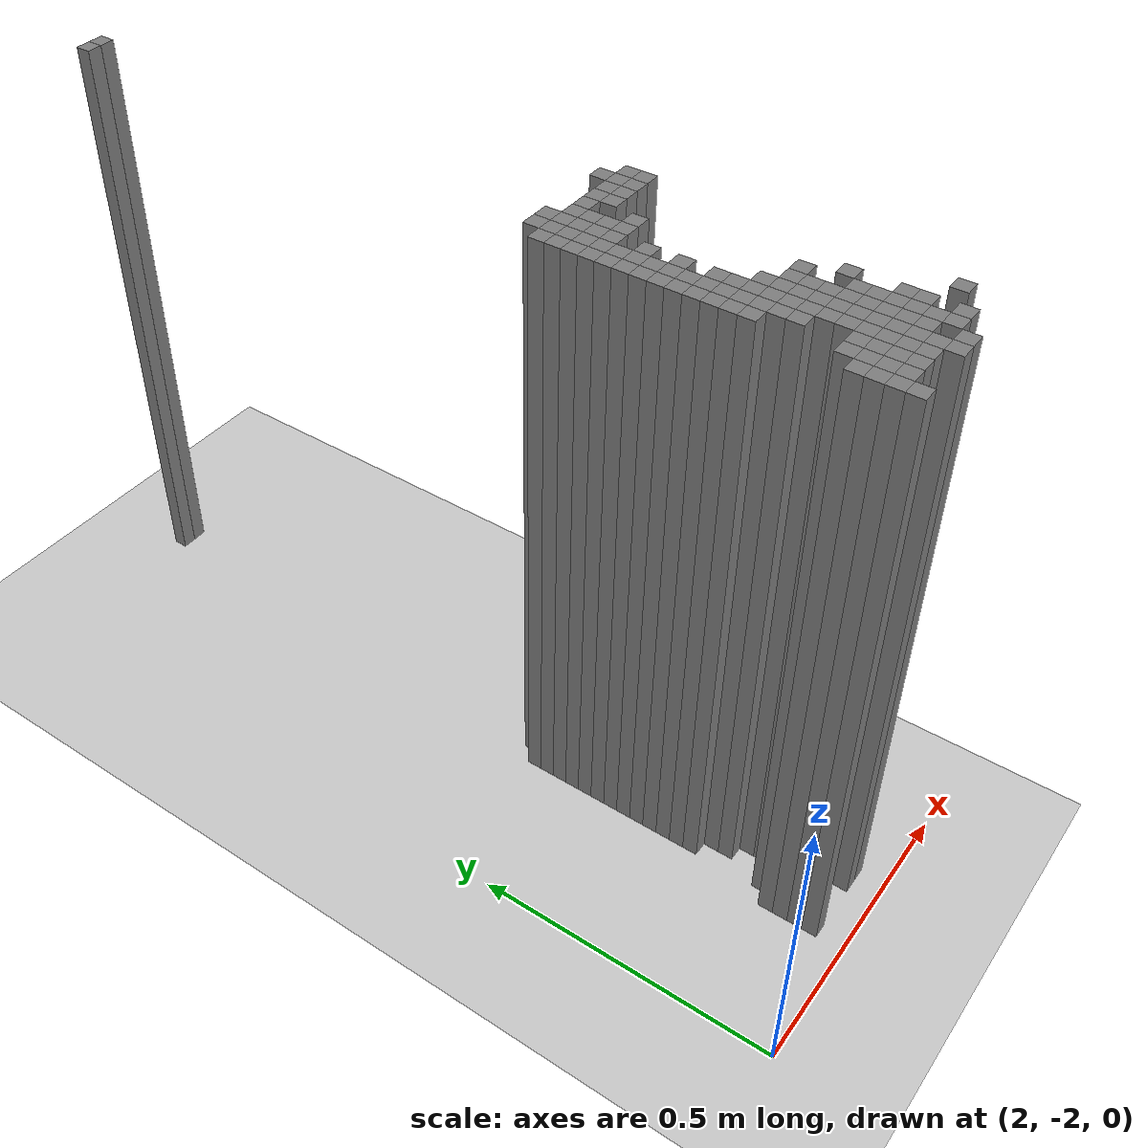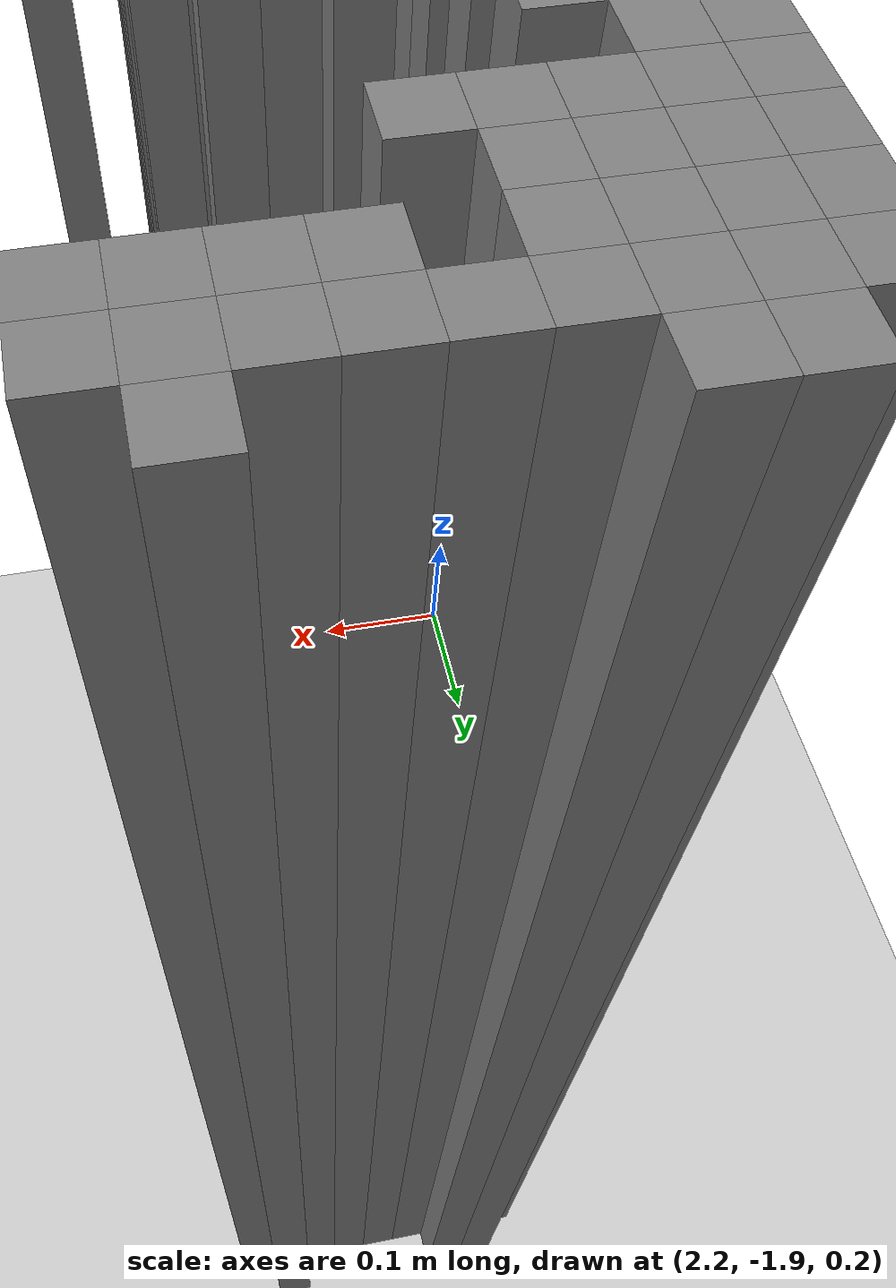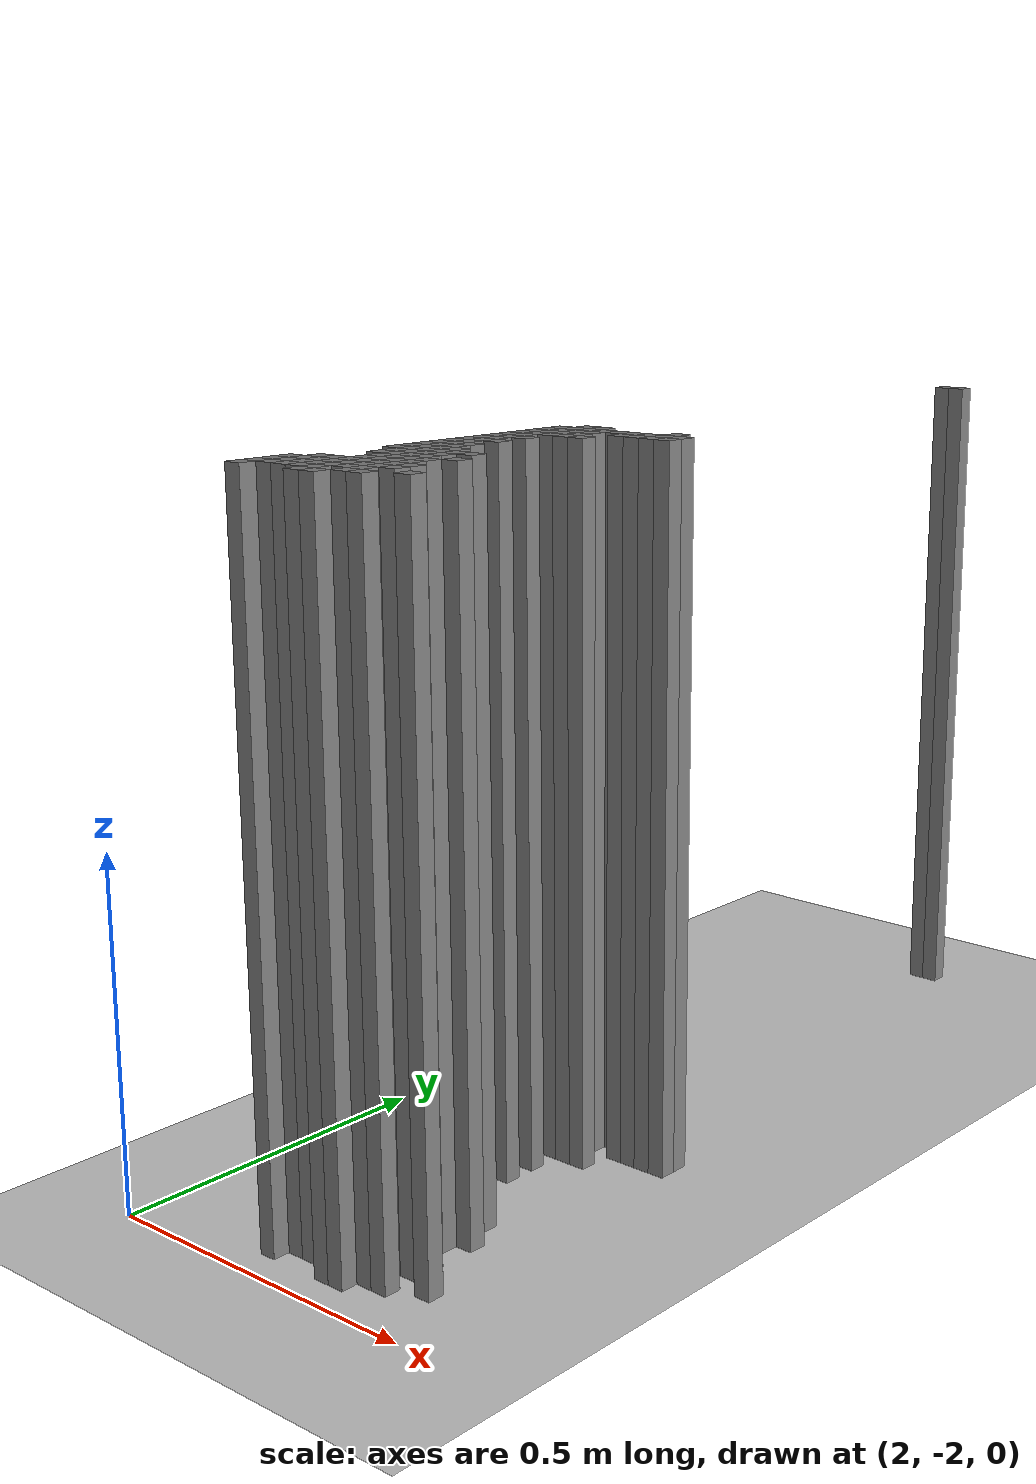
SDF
<sdf version="1.6">
 <world name="map_world">
  <include><uri>model://ground_plane</uri></include>
  <include><uri>model://sun</uri></include>
  <model name="obs_185_71">
   <static>true</static>
   <link name="link">
    <collision name="collision"><geometry><box><size>0.025 0.025 1.0</size></box></geometry></collision>
    <visual name="visual">
     <geometry><box><size>0.025 0.025 1.0</size></box></geometry>
     <material><ambient>0.5 0.5 0.5 1</ambient></material>
    </visual>
   </link>
   <pose>2.298765 -0.5440709999999997 0.5 0 0 0</pose>
  </model>
  <model name="obs_186_71">
   <static>true</static>
   <link name="link">
    <collision name="collision"><geometry><box><size>0.025 0.025 1.0</size></box></geometry></collision>
    <visual name="visual">
     <geometry><box><size>0.025 0.025 1.0</size></box></geometry>
     <material><ambient>0.5 0.5 0.5 1</ambient></material>
    </visual>
   </link>
   <pose>2.3237650000000003 -0.5440709999999997 0.5 0 0 0</pose>
  </model>
  <model name="obs_184_105">
   <static>true</static>
   <link name="link">
    <collision name="collision"><geometry><box><size>0.025 0.025 1.0</size></box></geometry></collision>
    <visual name="visual">
     <geometry><box><size>0.025 0.025 1.0</size></box></geometry>
     <material><ambient>0.5 0.5 0.5 1</ambient></material>
    </visual>
   </link>
   <pose>2.2737650000000005 -1.3940709999999998 0.5 0 0 0</pose>
  </model>
  <model name="obs_185_105">
   <static>true</static>
   <link name="link">
    <collision name="collision"><geometry><box><size>0.025 0.025 1.0</size></box></geometry></collision>
    <visual name="visual">
     <geometry><box><size>0.025 0.025 1.0</size></box></geometry>
     <material><ambient>0.5 0.5 0.5 1</ambient></material>
    </visual>
   </link>
   <pose>2.298765 -1.3940709999999998 0.5 0 0 0</pose>
  </model>
  <model name="obs_190_105">
   <static>true</static>
   <link name="link">
    <collision name="collision"><geometry><box><size>0.025 0.025 1.0</size></box></geometry></collision>
    <visual name="visual">
     <geometry><box><size>0.025 0.025 1.0</size></box></geometry>
     <material><ambient>0.5 0.5 0.5 1</ambient></material>
    </visual>
   </link>
   <pose>2.423765 -1.3940709999999998 0.5 0 0 0</pose>
  </model>
  <model name="obs_183_106">
   <static>true</static>
   <link name="link">
    <collision name="collision"><geometry><box><size>0.025 0.025 1.0</size></box></geometry></collision>
    <visual name="visual">
     <geometry><box><size>0.025 0.025 1.0</size></box></geometry>
     <material><ambient>0.5 0.5 0.5 1</ambient></material>
    </visual>
   </link>
   <pose>2.248765 -1.4190709999999997 0.5 0 0 0</pose>
  </model>
  <model name="obs_184_106">
   <static>true</static>
   <link name="link">
    <collision name="collision"><geometry><box><size>0.025 0.025 1.0</size></box></geometry></collision>
    <visual name="visual">
     <geometry><box><size>0.025 0.025 1.0</size></box></geometry>
     <material><ambient>0.5 0.5 0.5 1</ambient></material>
    </visual>
   </link>
   <pose>2.2737650000000005 -1.4190709999999997 0.5 0 0 0</pose>
  </model>
  <model name="obs_185_106">
   <static>true</static>
   <link name="link">
    <collision name="collision"><geometry><box><size>0.025 0.025 1.0</size></box></geometry></collision>
    <visual name="visual">
     <geometry><box><size>0.025 0.025 1.0</size></box></geometry>
     <material><ambient>0.5 0.5 0.5 1</ambient></material>
    </visual>
   </link>
   <pose>2.298765 -1.4190709999999997 0.5 0 0 0</pose>
  </model>
  <model name="obs_186_106">
   <static>true</static>
   <link name="link">
    <collision name="collision"><geometry><box><size>0.025 0.025 1.0</size></box></geometry></collision>
    <visual name="visual">
     <geometry><box><size>0.025 0.025 1.0</size></box></geometry>
     <material><ambient>0.5 0.5 0.5 1</ambient></material>
    </visual>
   </link>
   <pose>2.3237650000000003 -1.4190709999999997 0.5 0 0 0</pose>
  </model>
  <model name="obs_187_106">
   <static>true</static>
   <link name="link">
    <collision name="collision"><geometry><box><size>0.025 0.025 1.0</size></box></geometry></collision>
    <visual name="visual">
     <geometry><box><size>0.025 0.025 1.0</size></box></geometry>
     <material><ambient>0.5 0.5 0.5 1</ambient></material>
    </visual>
   </link>
   <pose>2.3487649999999998 -1.4190709999999997 0.5 0 0 0</pose>
  </model>
  <model name="obs_188_106">
   <static>true</static>
   <link name="link">
    <collision name="collision"><geometry><box><size>0.025 0.025 1.0</size></box></geometry></collision>
    <visual name="visual">
     <geometry><box><size>0.025 0.025 1.0</size></box></geometry>
     <material><ambient>0.5 0.5 0.5 1</ambient></material>
    </visual>
   </link>
   <pose>2.373765 -1.4190709999999997 0.5 0 0 0</pose>
  </model>
  <model name="obs_189_106">
   <static>true</static>
   <link name="link">
    <collision name="collision"><geometry><box><size>0.025 0.025 1.0</size></box></geometry></collision>
    <visual name="visual">
     <geometry><box><size>0.025 0.025 1.0</size></box></geometry>
     <material><ambient>0.5 0.5 0.5 1</ambient></material>
    </visual>
   </link>
   <pose>2.3987650000000005 -1.4190709999999997 0.5 0 0 0</pose>
  </model>
  <model name="obs_190_106">
   <static>true</static>
   <link name="link">
    <collision name="collision"><geometry><box><size>0.025 0.025 1.0</size></box></geometry></collision>
    <visual name="visual">
     <geometry><box><size>0.025 0.025 1.0</size></box></geometry>
     <material><ambient>0.5 0.5 0.5 1</ambient></material>
    </visual>
   </link>
   <pose>2.423765 -1.4190709999999997 0.5 0 0 0</pose>
  </model>
  <model name="obs_191_106">
   <static>true</static>
   <link name="link">
    <collision name="collision"><geometry><box><size>0.025 0.025 1.0</size></box></geometry></collision>
    <visual name="visual">
     <geometry><box><size>0.025 0.025 1.0</size></box></geometry>
     <material><ambient>0.5 0.5 0.5 1</ambient></material>
    </visual>
   </link>
   <pose>2.4487650000000003 -1.4190709999999997 0.5 0 0 0</pose>
  </model>
  <model name="obs_183_107">
   <static>true</static>
   <link name="link">
    <collision name="collision"><geometry><box><size>0.025 0.025 1.0</size></box></geometry></collision>
    <visual name="visual">
     <geometry><box><size>0.025 0.025 1.0</size></box></geometry>
     <material><ambient>0.5 0.5 0.5 1</ambient></material>
    </visual>
   </link>
   <pose>2.248765 -1.4440709999999999 0.5 0 0 0</pose>
  </model>
  <model name="obs_184_107">
   <static>true</static>
   <link name="link">
    <collision name="collision"><geometry><box><size>0.025 0.025 1.0</size></box></geometry></collision>
    <visual name="visual">
     <geometry><box><size>0.025 0.025 1.0</size></box></geometry>
     <material><ambient>0.5 0.5 0.5 1</ambient></material>
    </visual>
   </link>
   <pose>2.2737650000000005 -1.4440709999999999 0.5 0 0 0</pose>
  </model>
  <model name="obs_185_107">
   <static>true</static>
   <link name="link">
    <collision name="collision"><geometry><box><size>0.025 0.025 1.0</size></box></geometry></collision>
    <visual name="visual">
     <geometry><box><size>0.025 0.025 1.0</size></box></geometry>
     <material><ambient>0.5 0.5 0.5 1</ambient></material>
    </visual>
   </link>
   <pose>2.298765 -1.4440709999999999 0.5 0 0 0</pose>
  </model>
  <model name="obs_186_107">
   <static>true</static>
   <link name="link">
    <collision name="collision"><geometry><box><size>0.025 0.025 1.0</size></box></geometry></collision>
    <visual name="visual">
     <geometry><box><size>0.025 0.025 1.0</size></box></geometry>
     <material><ambient>0.5 0.5 0.5 1</ambient></material>
    </visual>
   </link>
   <pose>2.3237650000000003 -1.4440709999999999 0.5 0 0 0</pose>
  </model>
  <model name="obs_188_107">
   <static>true</static>
   <link name="link">
    <collision name="collision"><geometry><box><size>0.025 0.025 1.0</size></box></geometry></collision>
    <visual name="visual">
     <geometry><box><size>0.025 0.025 1.0</size></box></geometry>
     <material><ambient>0.5 0.5 0.5 1</ambient></material>
    </visual>
   </link>
   <pose>2.373765 -1.4440709999999999 0.5 0 0 0</pose>
  </model>
  <model name="obs_189_107">
   <static>true</static>
   <link name="link">
    <collision name="collision"><geometry><box><size>0.025 0.025 1.0</size></box></geometry></collision>
    <visual name="visual">
     <geometry><box><size>0.025 0.025 1.0</size></box></geometry>
     <material><ambient>0.5 0.5 0.5 1</ambient></material>
    </visual>
   </link>
   <pose>2.3987650000000005 -1.4440709999999999 0.5 0 0 0</pose>
  </model>
  <model name="obs_190_107">
   <static>true</static>
   <link name="link">
    <collision name="collision"><geometry><box><size>0.025 0.025 1.0</size></box></geometry></collision>
    <visual name="visual">
     <geometry><box><size>0.025 0.025 1.0</size></box></geometry>
     <material><ambient>0.5 0.5 0.5 1</ambient></material>
    </visual>
   </link>
   <pose>2.423765 -1.4440709999999999 0.5 0 0 0</pose>
  </model>
  <model name="obs_191_107">
   <static>true</static>
   <link name="link">
    <collision name="collision"><geometry><box><size>0.025 0.025 1.0</size></box></geometry></collision>
    <visual name="visual">
     <geometry><box><size>0.025 0.025 1.0</size></box></geometry>
     <material><ambient>0.5 0.5 0.5 1</ambient></material>
    </visual>
   </link>
   <pose>2.4487650000000003 -1.4440709999999999 0.5 0 0 0</pose>
  </model>
  <model name="obs_183_108">
   <static>true</static>
   <link name="link">
    <collision name="collision"><geometry><box><size>0.025 0.025 1.0</size></box></geometry></collision>
    <visual name="visual">
     <geometry><box><size>0.025 0.025 1.0</size></box></geometry>
     <material><ambient>0.5 0.5 0.5 1</ambient></material>
    </visual>
   </link>
   <pose>2.248765 -1.469071 0.5 0 0 0</pose>
  </model>
  <model name="obs_184_108">
   <static>true</static>
   <link name="link">
    <collision name="collision"><geometry><box><size>0.025 0.025 1.0</size></box></geometry></collision>
    <visual name="visual">
     <geometry><box><size>0.025 0.025 1.0</size></box></geometry>
     <material><ambient>0.5 0.5 0.5 1</ambient></material>
    </visual>
   </link>
   <pose>2.2737650000000005 -1.469071 0.5 0 0 0</pose>
  </model>
  <model name="obs_185_108">
   <static>true</static>
   <link name="link">
    <collision name="collision"><geometry><box><size>0.025 0.025 1.0</size></box></geometry></collision>
    <visual name="visual">
     <geometry><box><size>0.025 0.025 1.0</size></box></geometry>
     <material><ambient>0.5 0.5 0.5 1</ambient></material>
    </visual>
   </link>
   <pose>2.298765 -1.469071 0.5 0 0 0</pose>
  </model>
  <model name="obs_186_108">
   <static>true</static>
   <link name="link">
    <collision name="collision"><geometry><box><size>0.025 0.025 1.0</size></box></geometry></collision>
    <visual name="visual">
     <geometry><box><size>0.025 0.025 1.0</size></box></geometry>
     <material><ambient>0.5 0.5 0.5 1</ambient></material>
    </visual>
   </link>
   <pose>2.3237650000000003 -1.469071 0.5 0 0 0</pose>
  </model>
  <model name="obs_183_109">
   <static>true</static>
   <link name="link">
    <collision name="collision"><geometry><box><size>0.025 0.025 1.0</size></box></geometry></collision>
    <visual name="visual">
     <geometry><box><size>0.025 0.025 1.0</size></box></geometry>
     <material><ambient>0.5 0.5 0.5 1</ambient></material>
    </visual>
   </link>
   <pose>2.248765 -1.494071 0.5 0 0 0</pose>
  </model>
  <model name="obs_184_109">
   <static>true</static>
   <link name="link">
    <collision name="collision"><geometry><box><size>0.025 0.025 1.0</size></box></geometry></collision>
    <visual name="visual">
     <geometry><box><size>0.025 0.025 1.0</size></box></geometry>
     <material><ambient>0.5 0.5 0.5 1</ambient></material>
    </visual>
   </link>
   <pose>2.2737650000000005 -1.494071 0.5 0 0 0</pose>
  </model>
  <model name="obs_185_109">
   <static>true</static>
   <link name="link">
    <collision name="collision"><geometry><box><size>0.025 0.025 1.0</size></box></geometry></collision>
    <visual name="visual">
     <geometry><box><size>0.025 0.025 1.0</size></box></geometry>
     <material><ambient>0.5 0.5 0.5 1</ambient></material>
    </visual>
   </link>
   <pose>2.298765 -1.494071 0.5 0 0 0</pose>
  </model>
  <model name="obs_186_109">
   <static>true</static>
   <link name="link">
    <collision name="collision"><geometry><box><size>0.025 0.025 1.0</size></box></geometry></collision>
    <visual name="visual">
     <geometry><box><size>0.025 0.025 1.0</size></box></geometry>
     <material><ambient>0.5 0.5 0.5 1</ambient></material>
    </visual>
   </link>
   <pose>2.3237650000000003 -1.494071 0.5 0 0 0</pose>
  </model>
  <model name="obs_187_109">
   <static>true</static>
   <link name="link">
    <collision name="collision"><geometry><box><size>0.025 0.025 1.0</size></box></geometry></collision>
    <visual name="visual">
     <geometry><box><size>0.025 0.025 1.0</size></box></geometry>
     <material><ambient>0.5 0.5 0.5 1</ambient></material>
    </visual>
   </link>
   <pose>2.3487649999999998 -1.494071 0.5 0 0 0</pose>
  </model>
  <model name="obs_183_110">
   <static>true</static>
   <link name="link">
    <collision name="collision"><geometry><box><size>0.025 0.025 1.0</size></box></geometry></collision>
    <visual name="visual">
     <geometry><box><size>0.025 0.025 1.0</size></box></geometry>
     <material><ambient>0.5 0.5 0.5 1</ambient></material>
    </visual>
   </link>
   <pose>2.248765 -1.5190709999999998 0.5 0 0 0</pose>
  </model>
  <model name="obs_184_110">
   <static>true</static>
   <link name="link">
    <collision name="collision"><geometry><box><size>0.025 0.025 1.0</size></box></geometry></collision>
    <visual name="visual">
     <geometry><box><size>0.025 0.025 1.0</size></box></geometry>
     <material><ambient>0.5 0.5 0.5 1</ambient></material>
    </visual>
   </link>
   <pose>2.2737650000000005 -1.5190709999999998 0.5 0 0 0</pose>
  </model>
  <model name="obs_183_111">
   <static>true</static>
   <link name="link">
    <collision name="collision"><geometry><box><size>0.025 0.025 1.0</size></box></geometry></collision>
    <visual name="visual">
     <geometry><box><size>0.025 0.025 1.0</size></box></geometry>
     <material><ambient>0.5 0.5 0.5 1</ambient></material>
    </visual>
   </link>
   <pose>2.248765 -1.544071 0.5 0 0 0</pose>
  </model>
  <model name="obs_184_111">
   <static>true</static>
   <link name="link">
    <collision name="collision"><geometry><box><size>0.025 0.025 1.0</size></box></geometry></collision>
    <visual name="visual">
     <geometry><box><size>0.025 0.025 1.0</size></box></geometry>
     <material><ambient>0.5 0.5 0.5 1</ambient></material>
    </visual>
   </link>
   <pose>2.2737650000000005 -1.544071 0.5 0 0 0</pose>
  </model>
  <model name="obs_185_111">
   <static>true</static>
   <link name="link">
    <collision name="collision"><geometry><box><size>0.025 0.025 1.0</size></box></geometry></collision>
    <visual name="visual">
     <geometry><box><size>0.025 0.025 1.0</size></box></geometry>
     <material><ambient>0.5 0.5 0.5 1</ambient></material>
    </visual>
   </link>
   <pose>2.298765 -1.544071 0.5 0 0 0</pose>
  </model>
  <model name="obs_183_112">
   <static>true</static>
   <link name="link">
    <collision name="collision"><geometry><box><size>0.025 0.025 1.0</size></box></geometry></collision>
    <visual name="visual">
     <geometry><box><size>0.025 0.025 1.0</size></box></geometry>
     <material><ambient>0.5 0.5 0.5 1</ambient></material>
    </visual>
   </link>
   <pose>2.248765 -1.5690709999999999 0.5 0 0 0</pose>
  </model>
  <model name="obs_184_112">
   <static>true</static>
   <link name="link">
    <collision name="collision"><geometry><box><size>0.025 0.025 1.0</size></box></geometry></collision>
    <visual name="visual">
     <geometry><box><size>0.025 0.025 1.0</size></box></geometry>
     <material><ambient>0.5 0.5 0.5 1</ambient></material>
    </visual>
   </link>
   <pose>2.2737650000000005 -1.5690709999999999 0.5 0 0 0</pose>
  </model>
  <model name="obs_183_113">
   <static>true</static>
   <link name="link">
    <collision name="collision"><geometry><box><size>0.025 0.025 1.0</size></box></geometry></collision>
    <visual name="visual">
     <geometry><box><size>0.025 0.025 1.0</size></box></geometry>
     <material><ambient>0.5 0.5 0.5 1</ambient></material>
    </visual>
   </link>
   <pose>2.248765 -1.594071 0.5 0 0 0</pose>
  </model>
  <model name="obs_184_113">
   <static>true</static>
   <link name="link">
    <collision name="collision"><geometry><box><size>0.025 0.025 1.0</size></box></geometry></collision>
    <visual name="visual">
     <geometry><box><size>0.025 0.025 1.0</size></box></geometry>
     <material><ambient>0.5 0.5 0.5 1</ambient></material>
    </visual>
   </link>
   <pose>2.2737650000000005 -1.594071 0.5 0 0 0</pose>
  </model>
  <model name="obs_185_113">
   <static>true</static>
   <link name="link">
    <collision name="collision"><geometry><box><size>0.025 0.025 1.0</size></box></geometry></collision>
    <visual name="visual">
     <geometry><box><size>0.025 0.025 1.0</size></box></geometry>
     <material><ambient>0.5 0.5 0.5 1</ambient></material>
    </visual>
   </link>
   <pose>2.298765 -1.594071 0.5 0 0 0</pose>
  </model>
  <model name="obs_183_114">
   <static>true</static>
   <link name="link">
    <collision name="collision"><geometry><box><size>0.025 0.025 1.0</size></box></geometry></collision>
    <visual name="visual">
     <geometry><box><size>0.025 0.025 1.0</size></box></geometry>
     <material><ambient>0.5 0.5 0.5 1</ambient></material>
    </visual>
   </link>
   <pose>2.248765 -1.619071 0.5 0 0 0</pose>
  </model>
  <model name="obs_184_114">
   <static>true</static>
   <link name="link">
    <collision name="collision"><geometry><box><size>0.025 0.025 1.0</size></box></geometry></collision>
    <visual name="visual">
     <geometry><box><size>0.025 0.025 1.0</size></box></geometry>
     <material><ambient>0.5 0.5 0.5 1</ambient></material>
    </visual>
   </link>
   <pose>2.2737650000000005 -1.619071 0.5 0 0 0</pose>
  </model>
  <model name="obs_183_115">
   <static>true</static>
   <link name="link">
    <collision name="collision"><geometry><box><size>0.025 0.025 1.0</size></box></geometry></collision>
    <visual name="visual">
     <geometry><box><size>0.025 0.025 1.0</size></box></geometry>
     <material><ambient>0.5 0.5 0.5 1</ambient></material>
    </visual>
   </link>
   <pose>2.248765 -1.6440709999999998 0.5 0 0 0</pose>
  </model>
  <model name="obs_184_115">
   <static>true</static>
   <link name="link">
    <collision name="collision"><geometry><box><size>0.025 0.025 1.0</size></box></geometry></collision>
    <visual name="visual">
     <geometry><box><size>0.025 0.025 1.0</size></box></geometry>
     <material><ambient>0.5 0.5 0.5 1</ambient></material>
    </visual>
   </link>
   <pose>2.2737650000000005 -1.6440709999999998 0.5 0 0 0</pose>
  </model>
  <model name="obs_185_115">
   <static>true</static>
   <link name="link">
    <collision name="collision"><geometry><box><size>0.025 0.025 1.0</size></box></geometry></collision>
    <visual name="visual">
     <geometry><box><size>0.025 0.025 1.0</size></box></geometry>
     <material><ambient>0.5 0.5 0.5 1</ambient></material>
    </visual>
   </link>
   <pose>2.298765 -1.6440709999999998 0.5 0 0 0</pose>
  </model>
  <model name="obs_183_116">
   <static>true</static>
   <link name="link">
    <collision name="collision"><geometry><box><size>0.025 0.025 1.0</size></box></geometry></collision>
    <visual name="visual">
     <geometry><box><size>0.025 0.025 1.0</size></box></geometry>
     <material><ambient>0.5 0.5 0.5 1</ambient></material>
    </visual>
   </link>
   <pose>2.248765 -1.669071 0.5 0 0 0</pose>
  </model>
  <model name="obs_184_116">
   <static>true</static>
   <link name="link">
    <collision name="collision"><geometry><box><size>0.025 0.025 1.0</size></box></geometry></collision>
    <visual name="visual">
     <geometry><box><size>0.025 0.025 1.0</size></box></geometry>
     <material><ambient>0.5 0.5 0.5 1</ambient></material>
    </visual>
   </link>
   <pose>2.2737650000000005 -1.669071 0.5 0 0 0</pose>
  </model>
  <model name="obs_185_116">
   <static>true</static>
   <link name="link">
    <collision name="collision"><geometry><box><size>0.025 0.025 1.0</size></box></geometry></collision>
    <visual name="visual">
     <geometry><box><size>0.025 0.025 1.0</size></box></geometry>
     <material><ambient>0.5 0.5 0.5 1</ambient></material>
    </visual>
   </link>
   <pose>2.298765 -1.669071 0.5 0 0 0</pose>
  </model>
  <model name="obs_183_117">
   <static>true</static>
   <link name="link">
    <collision name="collision"><geometry><box><size>0.025 0.025 1.0</size></box></geometry></collision>
    <visual name="visual">
     <geometry><box><size>0.025 0.025 1.0</size></box></geometry>
     <material><ambient>0.5 0.5 0.5 1</ambient></material>
    </visual>
   </link>
   <pose>2.248765 -1.6940709999999999 0.5 0 0 0</pose>
  </model>
  <model name="obs_184_117">
   <static>true</static>
   <link name="link">
    <collision name="collision"><geometry><box><size>0.025 0.025 1.0</size></box></geometry></collision>
    <visual name="visual">
     <geometry><box><size>0.025 0.025 1.0</size></box></geometry>
     <material><ambient>0.5 0.5 0.5 1</ambient></material>
    </visual>
   </link>
   <pose>2.2737650000000005 -1.6940709999999999 0.5 0 0 0</pose>
  </model>
  <model name="obs_185_117">
   <static>true</static>
   <link name="link">
    <collision name="collision"><geometry><box><size>0.025 0.025 1.0</size></box></geometry></collision>
    <visual name="visual">
     <geometry><box><size>0.025 0.025 1.0</size></box></geometry>
     <material><ambient>0.5 0.5 0.5 1</ambient></material>
    </visual>
   </link>
   <pose>2.298765 -1.6940709999999999 0.5 0 0 0</pose>
  </model>
  <model name="obs_186_117">
   <static>true</static>
   <link name="link">
    <collision name="collision"><geometry><box><size>0.025 0.025 1.0</size></box></geometry></collision>
    <visual name="visual">
     <geometry><box><size>0.025 0.025 1.0</size></box></geometry>
     <material><ambient>0.5 0.5 0.5 1</ambient></material>
    </visual>
   </link>
   <pose>2.3237650000000003 -1.6940709999999999 0.5 0 0 0</pose>
  </model>
  <model name="obs_183_118">
   <static>true</static>
   <link name="link">
    <collision name="collision"><geometry><box><size>0.025 0.025 1.0</size></box></geometry></collision>
    <visual name="visual">
     <geometry><box><size>0.025 0.025 1.0</size></box></geometry>
     <material><ambient>0.5 0.5 0.5 1</ambient></material>
    </visual>
   </link>
   <pose>2.248765 -1.719071 0.5 0 0 0</pose>
  </model>
  <model name="obs_184_118">
   <static>true</static>
   <link name="link">
    <collision name="collision"><geometry><box><size>0.025 0.025 1.0</size></box></geometry></collision>
    <visual name="visual">
     <geometry><box><size>0.025 0.025 1.0</size></box></geometry>
     <material><ambient>0.5 0.5 0.5 1</ambient></material>
    </visual>
   </link>
   <pose>2.2737650000000005 -1.719071 0.5 0 0 0</pose>
  </model>
  <model name="obs_185_118">
   <static>true</static>
   <link name="link">
    <collision name="collision"><geometry><box><size>0.025 0.025 1.0</size></box></geometry></collision>
    <visual name="visual">
     <geometry><box><size>0.025 0.025 1.0</size></box></geometry>
     <material><ambient>0.5 0.5 0.5 1</ambient></material>
    </visual>
   </link>
   <pose>2.298765 -1.719071 0.5 0 0 0</pose>
  </model>
  <model name="obs_186_118">
   <static>true</static>
   <link name="link">
    <collision name="collision"><geometry><box><size>0.025 0.025 1.0</size></box></geometry></collision>
    <visual name="visual">
     <geometry><box><size>0.025 0.025 1.0</size></box></geometry>
     <material><ambient>0.5 0.5 0.5 1</ambient></material>
    </visual>
   </link>
   <pose>2.3237650000000003 -1.719071 0.5 0 0 0</pose>
  </model>
  <model name="obs_187_118">
   <static>true</static>
   <link name="link">
    <collision name="collision"><geometry><box><size>0.025 0.025 1.0</size></box></geometry></collision>
    <visual name="visual">
     <geometry><box><size>0.025 0.025 1.0</size></box></geometry>
     <material><ambient>0.5 0.5 0.5 1</ambient></material>
    </visual>
   </link>
   <pose>2.3487649999999998 -1.719071 0.5 0 0 0</pose>
  </model>
  <model name="obs_188_118">
   <static>true</static>
   <link name="link">
    <collision name="collision"><geometry><box><size>0.025 0.025 1.0</size></box></geometry></collision>
    <visual name="visual">
     <geometry><box><size>0.025 0.025 1.0</size></box></geometry>
     <material><ambient>0.5 0.5 0.5 1</ambient></material>
    </visual>
   </link>
   <pose>2.373765 -1.719071 0.5 0 0 0</pose>
  </model>
  <model name="obs_184_119">
   <static>true</static>
   <link name="link">
    <collision name="collision"><geometry><box><size>0.025 0.025 1.0</size></box></geometry></collision>
    <visual name="visual">
     <geometry><box><size>0.025 0.025 1.0</size></box></geometry>
     <material><ambient>0.5 0.5 0.5 1</ambient></material>
    </visual>
   </link>
   <pose>2.2737650000000005 -1.744071 0.5 0 0 0</pose>
  </model>
  <model name="obs_185_119">
   <static>true</static>
   <link name="link">
    <collision name="collision"><geometry><box><size>0.025 0.025 1.0</size></box></geometry></collision>
    <visual name="visual">
     <geometry><box><size>0.025 0.025 1.0</size></box></geometry>
     <material><ambient>0.5 0.5 0.5 1</ambient></material>
    </visual>
   </link>
   <pose>2.298765 -1.744071 0.5 0 0 0</pose>
  </model>
  <model name="obs_186_119">
   <static>true</static>
   <link name="link">
    <collision name="collision"><geometry><box><size>0.025 0.025 1.0</size></box></geometry></collision>
    <visual name="visual">
     <geometry><box><size>0.025 0.025 1.0</size></box></geometry>
     <material><ambient>0.5 0.5 0.5 1</ambient></material>
    </visual>
   </link>
   <pose>2.3237650000000003 -1.744071 0.5 0 0 0</pose>
  </model>
  <model name="obs_187_119">
   <static>true</static>
   <link name="link">
    <collision name="collision"><geometry><box><size>0.025 0.025 1.0</size></box></geometry></collision>
    <visual name="visual">
     <geometry><box><size>0.025 0.025 1.0</size></box></geometry>
     <material><ambient>0.5 0.5 0.5 1</ambient></material>
    </visual>
   </link>
   <pose>2.3487649999999998 -1.744071 0.5 0 0 0</pose>
  </model>
  <model name="obs_184_120">
   <static>true</static>
   <link name="link">
    <collision name="collision"><geometry><box><size>0.025 0.025 1.0</size></box></geometry></collision>
    <visual name="visual">
     <geometry><box><size>0.025 0.025 1.0</size></box></geometry>
     <material><ambient>0.5 0.5 0.5 1</ambient></material>
    </visual>
   </link>
   <pose>2.2737650000000005 -1.7690709999999998 0.5 0 0 0</pose>
  </model>
  <model name="obs_185_120">
   <static>true</static>
   <link name="link">
    <collision name="collision"><geometry><box><size>0.025 0.025 1.0</size></box></geometry></collision>
    <visual name="visual">
     <geometry><box><size>0.025 0.025 1.0</size></box></geometry>
     <material><ambient>0.5 0.5 0.5 1</ambient></material>
    </visual>
   </link>
   <pose>2.298765 -1.7690709999999998 0.5 0 0 0</pose>
  </model>
  <model name="obs_186_120">
   <static>true</static>
   <link name="link">
    <collision name="collision"><geometry><box><size>0.025 0.025 1.0</size></box></geometry></collision>
    <visual name="visual">
     <geometry><box><size>0.025 0.025 1.0</size></box></geometry>
     <material><ambient>0.5 0.5 0.5 1</ambient></material>
    </visual>
   </link>
   <pose>2.3237650000000003 -1.7690709999999998 0.5 0 0 0</pose>
  </model>
  <model name="obs_187_120">
   <static>true</static>
   <link name="link">
    <collision name="collision"><geometry><box><size>0.025 0.025 1.0</size></box></geometry></collision>
    <visual name="visual">
     <geometry><box><size>0.025 0.025 1.0</size></box></geometry>
     <material><ambient>0.5 0.5 0.5 1</ambient></material>
    </visual>
   </link>
   <pose>2.3487649999999998 -1.7690709999999998 0.5 0 0 0</pose>
  </model>
  <model name="obs_189_120">
   <static>true</static>
   <link name="link">
    <collision name="collision"><geometry><box><size>0.025 0.025 1.0</size></box></geometry></collision>
    <visual name="visual">
     <geometry><box><size>0.025 0.025 1.0</size></box></geometry>
     <material><ambient>0.5 0.5 0.5 1</ambient></material>
    </visual>
   </link>
   <pose>2.3987650000000005 -1.7690709999999998 0.5 0 0 0</pose>
  </model>
  <model name="obs_185_121">
   <static>true</static>
   <link name="link">
    <collision name="collision"><geometry><box><size>0.025 0.025 1.0</size></box></geometry></collision>
    <visual name="visual">
     <geometry><box><size>0.025 0.025 1.0</size></box></geometry>
     <material><ambient>0.5 0.5 0.5 1</ambient></material>
    </visual>
   </link>
   <pose>2.298765 -1.794071 0.5 0 0 0</pose>
  </model>
  <model name="obs_186_121">
   <static>true</static>
   <link name="link">
    <collision name="collision"><geometry><box><size>0.025 0.025 1.0</size></box></geometry></collision>
    <visual name="visual">
     <geometry><box><size>0.025 0.025 1.0</size></box></geometry>
     <material><ambient>0.5 0.5 0.5 1</ambient></material>
    </visual>
   </link>
   <pose>2.3237650000000003 -1.794071 0.5 0 0 0</pose>
  </model>
  <model name="obs_187_121">
   <static>true</static>
   <link name="link">
    <collision name="collision"><geometry><box><size>0.025 0.025 1.0</size></box></geometry></collision>
    <visual name="visual">
     <geometry><box><size>0.025 0.025 1.0</size></box></geometry>
     <material><ambient>0.5 0.5 0.5 1</ambient></material>
    </visual>
   </link>
   <pose>2.3487649999999998 -1.794071 0.5 0 0 0</pose>
  </model>
  <model name="obs_188_121">
   <static>true</static>
   <link name="link">
    <collision name="collision"><geometry><box><size>0.025 0.025 1.0</size></box></geometry></collision>
    <visual name="visual">
     <geometry><box><size>0.025 0.025 1.0</size></box></geometry>
     <material><ambient>0.5 0.5 0.5 1</ambient></material>
    </visual>
   </link>
   <pose>2.373765 -1.794071 0.5 0 0 0</pose>
  </model>
  <model name="obs_185_122">
   <static>true</static>
   <link name="link">
    <collision name="collision"><geometry><box><size>0.025 0.025 1.0</size></box></geometry></collision>
    <visual name="visual">
     <geometry><box><size>0.025 0.025 1.0</size></box></geometry>
     <material><ambient>0.5 0.5 0.5 1</ambient></material>
    </visual>
   </link>
   <pose>2.298765 -1.8190709999999999 0.5 0 0 0</pose>
  </model>
  <model name="obs_186_122">
   <static>true</static>
   <link name="link">
    <collision name="collision"><geometry><box><size>0.025 0.025 1.0</size></box></geometry></collision>
    <visual name="visual">
     <geometry><box><size>0.025 0.025 1.0</size></box></geometry>
     <material><ambient>0.5 0.5 0.5 1</ambient></material>
    </visual>
   </link>
   <pose>2.3237650000000003 -1.8190709999999999 0.5 0 0 0</pose>
  </model>
  <model name="obs_187_122">
   <static>true</static>
   <link name="link">
    <collision name="collision"><geometry><box><size>0.025 0.025 1.0</size></box></geometry></collision>
    <visual name="visual">
     <geometry><box><size>0.025 0.025 1.0</size></box></geometry>
     <material><ambient>0.5 0.5 0.5 1</ambient></material>
    </visual>
   </link>
   <pose>2.3487649999999998 -1.8190709999999999 0.5 0 0 0</pose>
  </model>
  <model name="obs_188_122">
   <static>true</static>
   <link name="link">
    <collision name="collision"><geometry><box><size>0.025 0.025 1.0</size></box></geometry></collision>
    <visual name="visual">
     <geometry><box><size>0.025 0.025 1.0</size></box></geometry>
     <material><ambient>0.5 0.5 0.5 1</ambient></material>
    </visual>
   </link>
   <pose>2.373765 -1.8190709999999999 0.5 0 0 0</pose>
  </model>
  <model name="obs_183_123">
   <static>true</static>
   <link name="link">
    <collision name="collision"><geometry><box><size>0.025 0.025 1.0</size></box></geometry></collision>
    <visual name="visual">
     <geometry><box><size>0.025 0.025 1.0</size></box></geometry>
     <material><ambient>0.5 0.5 0.5 1</ambient></material>
    </visual>
   </link>
   <pose>2.248765 -1.844071 0.5 0 0 0</pose>
  </model>
  <model name="obs_184_123">
   <static>true</static>
   <link name="link">
    <collision name="collision"><geometry><box><size>0.025 0.025 1.0</size></box></geometry></collision>
    <visual name="visual">
     <geometry><box><size>0.025 0.025 1.0</size></box></geometry>
     <material><ambient>0.5 0.5 0.5 1</ambient></material>
    </visual>
   </link>
   <pose>2.2737650000000005 -1.844071 0.5 0 0 0</pose>
  </model>
  <model name="obs_185_123">
   <static>true</static>
   <link name="link">
    <collision name="collision"><geometry><box><size>0.025 0.025 1.0</size></box></geometry></collision>
    <visual name="visual">
     <geometry><box><size>0.025 0.025 1.0</size></box></geometry>
     <material><ambient>0.5 0.5 0.5 1</ambient></material>
    </visual>
   </link>
   <pose>2.298765 -1.844071 0.5 0 0 0</pose>
  </model>
  <model name="obs_186_123">
   <static>true</static>
   <link name="link">
    <collision name="collision"><geometry><box><size>0.025 0.025 1.0</size></box></geometry></collision>
    <visual name="visual">
     <geometry><box><size>0.025 0.025 1.0</size></box></geometry>
     <material><ambient>0.5 0.5 0.5 1</ambient></material>
    </visual>
   </link>
   <pose>2.3237650000000003 -1.844071 0.5 0 0 0</pose>
  </model>
  <model name="obs_187_123">
   <static>true</static>
   <link name="link">
    <collision name="collision"><geometry><box><size>0.025 0.025 1.0</size></box></geometry></collision>
    <visual name="visual">
     <geometry><box><size>0.025 0.025 1.0</size></box></geometry>
     <material><ambient>0.5 0.5 0.5 1</ambient></material>
    </visual>
   </link>
   <pose>2.3487649999999998 -1.844071 0.5 0 0 0</pose>
  </model>
  <model name="obs_188_123">
   <static>true</static>
   <link name="link">
    <collision name="collision"><geometry><box><size>0.025 0.025 1.0</size></box></geometry></collision>
    <visual name="visual">
     <geometry><box><size>0.025 0.025 1.0</size></box></geometry>
     <material><ambient>0.5 0.5 0.5 1</ambient></material>
    </visual>
   </link>
   <pose>2.373765 -1.844071 0.5 0 0 0</pose>
  </model>
  <model name="obs_189_123">
   <static>true</static>
   <link name="link">
    <collision name="collision"><geometry><box><size>0.025 0.025 1.0</size></box></geometry></collision>
    <visual name="visual">
     <geometry><box><size>0.025 0.025 1.0</size></box></geometry>
     <material><ambient>0.5 0.5 0.5 1</ambient></material>
    </visual>
   </link>
   <pose>2.3987650000000005 -1.844071 0.5 0 0 0</pose>
  </model>
  <model name="obs_182_124">
   <static>true</static>
   <link name="link">
    <collision name="collision"><geometry><box><size>0.025 0.025 1.0</size></box></geometry></collision>
    <visual name="visual">
     <geometry><box><size>0.025 0.025 1.0</size></box></geometry>
     <material><ambient>0.5 0.5 0.5 1</ambient></material>
    </visual>
   </link>
   <pose>2.2237649999999998 -1.869071 0.5 0 0 0</pose>
  </model>
  <model name="obs_183_124">
   <static>true</static>
   <link name="link">
    <collision name="collision"><geometry><box><size>0.025 0.025 1.0</size></box></geometry></collision>
    <visual name="visual">
     <geometry><box><size>0.025 0.025 1.0</size></box></geometry>
     <material><ambient>0.5 0.5 0.5 1</ambient></material>
    </visual>
   </link>
   <pose>2.248765 -1.869071 0.5 0 0 0</pose>
  </model>
  <model name="obs_184_124">
   <static>true</static>
   <link name="link">
    <collision name="collision"><geometry><box><size>0.025 0.025 1.0</size></box></geometry></collision>
    <visual name="visual">
     <geometry><box><size>0.025 0.025 1.0</size></box></geometry>
     <material><ambient>0.5 0.5 0.5 1</ambient></material>
    </visual>
   </link>
   <pose>2.2737650000000005 -1.869071 0.5 0 0 0</pose>
  </model>
  <model name="obs_185_124">
   <static>true</static>
   <link name="link">
    <collision name="collision"><geometry><box><size>0.025 0.025 1.0</size></box></geometry></collision>
    <visual name="visual">
     <geometry><box><size>0.025 0.025 1.0</size></box></geometry>
     <material><ambient>0.5 0.5 0.5 1</ambient></material>
    </visual>
   </link>
   <pose>2.298765 -1.869071 0.5 0 0 0</pose>
  </model>
  <model name="obs_186_124">
   <static>true</static>
   <link name="link">
    <collision name="collision"><geometry><box><size>0.025 0.025 1.0</size></box></geometry></collision>
    <visual name="visual">
     <geometry><box><size>0.025 0.025 1.0</size></box></geometry>
     <material><ambient>0.5 0.5 0.5 1</ambient></material>
    </visual>
   </link>
   <pose>2.3237650000000003 -1.869071 0.5 0 0 0</pose>
  </model>
  <model name="obs_187_124">
   <static>true</static>
   <link name="link">
    <collision name="collision"><geometry><box><size>0.025 0.025 1.0</size></box></geometry></collision>
    <visual name="visual">
     <geometry><box><size>0.025 0.025 1.0</size></box></geometry>
     <material><ambient>0.5 0.5 0.5 1</ambient></material>
    </visual>
   </link>
   <pose>2.3487649999999998 -1.869071 0.5 0 0 0</pose>
  </model>
  <model name="obs_188_124">
   <static>true</static>
   <link name="link">
    <collision name="collision"><geometry><box><size>0.025 0.025 1.0</size></box></geometry></collision>
    <visual name="visual">
     <geometry><box><size>0.025 0.025 1.0</size></box></geometry>
     <material><ambient>0.5 0.5 0.5 1</ambient></material>
    </visual>
   </link>
   <pose>2.373765 -1.869071 0.5 0 0 0</pose>
  </model>
  <model name="obs_189_124">
   <static>true</static>
   <link name="link">
    <collision name="collision"><geometry><box><size>0.025 0.025 1.0</size></box></geometry></collision>
    <visual name="visual">
     <geometry><box><size>0.025 0.025 1.0</size></box></geometry>
     <material><ambient>0.5 0.5 0.5 1</ambient></material>
    </visual>
   </link>
   <pose>2.3987650000000005 -1.869071 0.5 0 0 0</pose>
  </model>
  <model name="obs_182_125">
   <static>true</static>
   <link name="link">
    <collision name="collision"><geometry><box><size>0.025 0.025 1.0</size></box></geometry></collision>
    <visual name="visual">
     <geometry><box><size>0.025 0.025 1.0</size></box></geometry>
     <material><ambient>0.5 0.5 0.5 1</ambient></material>
    </visual>
   </link>
   <pose>2.2237649999999998 -1.8940709999999998 0.5 0 0 0</pose>
  </model>
  <model name="obs_183_125">
   <static>true</static>
   <link name="link">
    <collision name="collision"><geometry><box><size>0.025 0.025 1.0</size></box></geometry></collision>
    <visual name="visual">
     <geometry><box><size>0.025 0.025 1.0</size></box></geometry>
     <material><ambient>0.5 0.5 0.5 1</ambient></material>
    </visual>
   </link>
   <pose>2.248765 -1.8940709999999998 0.5 0 0 0</pose>
  </model>
  <model name="obs_184_125">
   <static>true</static>
   <link name="link">
    <collision name="collision"><geometry><box><size>0.025 0.025 1.0</size></box></geometry></collision>
    <visual name="visual">
     <geometry><box><size>0.025 0.025 1.0</size></box></geometry>
     <material><ambient>0.5 0.5 0.5 1</ambient></material>
    </visual>
   </link>
   <pose>2.2737650000000005 -1.8940709999999998 0.5 0 0 0</pose>
  </model>
  <model name="obs_185_125">
   <static>true</static>
   <link name="link">
    <collision name="collision"><geometry><box><size>0.025 0.025 1.0</size></box></geometry></collision>
    <visual name="visual">
     <geometry><box><size>0.025 0.025 1.0</size></box></geometry>
     <material><ambient>0.5 0.5 0.5 1</ambient></material>
    </visual>
   </link>
   <pose>2.298765 -1.8940709999999998 0.5 0 0 0</pose>
  </model>
  <model name="obs_186_125">
   <static>true</static>
   <link name="link">
    <collision name="collision"><geometry><box><size>0.025 0.025 1.0</size></box></geometry></collision>
    <visual name="visual">
     <geometry><box><size>0.025 0.025 1.0</size></box></geometry>
     <material><ambient>0.5 0.5 0.5 1</ambient></material>
    </visual>
   </link>
   <pose>2.3237650000000003 -1.8940709999999998 0.5 0 0 0</pose>
  </model>
  <model name="obs_187_125">
   <static>true</static>
   <link name="link">
    <collision name="collision"><geometry><box><size>0.025 0.025 1.0</size></box></geometry></collision>
    <visual name="visual">
     <geometry><box><size>0.025 0.025 1.0</size></box></geometry>
     <material><ambient>0.5 0.5 0.5 1</ambient></material>
    </visual>
   </link>
   <pose>2.3487649999999998 -1.8940709999999998 0.5 0 0 0</pose>
  </model>
  <model name="obs_188_125">
   <static>true</static>
   <link name="link">
    <collision name="collision"><geometry><box><size>0.025 0.025 1.0</size></box></geometry></collision>
    <visual name="visual">
     <geometry><box><size>0.025 0.025 1.0</size></box></geometry>
     <material><ambient>0.5 0.5 0.5 1</ambient></material>
    </visual>
   </link>
   <pose>2.373765 -1.8940709999999998 0.5 0 0 0</pose>
  </model>
  <model name="obs_191_125">
   <static>true</static>
   <link name="link">
    <collision name="collision"><geometry><box><size>0.025 0.025 1.0</size></box></geometry></collision>
    <visual name="visual">
     <geometry><box><size>0.025 0.025 1.0</size></box></geometry>
     <material><ambient>0.5 0.5 0.5 1</ambient></material>
    </visual>
   </link>
   <pose>2.4487650000000003 -1.8940709999999998 0.5 0 0 0</pose>
  </model>
  <model name="obs_182_126">
   <static>true</static>
   <link name="link">
    <collision name="collision"><geometry><box><size>0.025 0.025 1.0</size></box></geometry></collision>
    <visual name="visual">
     <geometry><box><size>0.025 0.025 1.0</size></box></geometry>
     <material><ambient>0.5 0.5 0.5 1</ambient></material>
    </visual>
   </link>
   <pose>2.2237649999999998 -1.919071 0.5 0 0 0</pose>
  </model>
  <model name="obs_183_126">
   <static>true</static>
   <link name="link">
    <collision name="collision"><geometry><box><size>0.025 0.025 1.0</size></box></geometry></collision>
    <visual name="visual">
     <geometry><box><size>0.025 0.025 1.0</size></box></geometry>
     <material><ambient>0.5 0.5 0.5 1</ambient></material>
    </visual>
   </link>
   <pose>2.248765 -1.919071 0.5 0 0 0</pose>
  </model>
  <model name="obs_184_126">
   <static>true</static>
   <link name="link">
    <collision name="collision"><geometry><box><size>0.025 0.025 1.0</size></box></geometry></collision>
    <visual name="visual">
     <geometry><box><size>0.025 0.025 1.0</size></box></geometry>
     <material><ambient>0.5 0.5 0.5 1</ambient></material>
    </visual>
   </link>
   <pose>2.2737650000000005 -1.919071 0.5 0 0 0</pose>
  </model>
  <model name="obs_185_126">
   <static>true</static>
   <link name="link">
    <collision name="collision"><geometry><box><size>0.025 0.025 1.0</size></box></geometry></collision>
    <visual name="visual">
     <geometry><box><size>0.025 0.025 1.0</size></box></geometry>
     <material><ambient>0.5 0.5 0.5 1</ambient></material>
    </visual>
   </link>
   <pose>2.298765 -1.919071 0.5 0 0 0</pose>
  </model>
  <model name="obs_186_126">
   <static>true</static>
   <link name="link">
    <collision name="collision"><geometry><box><size>0.025 0.025 1.0</size></box></geometry></collision>
    <visual name="visual">
     <geometry><box><size>0.025 0.025 1.0</size></box></geometry>
     <material><ambient>0.5 0.5 0.5 1</ambient></material>
    </visual>
   </link>
   <pose>2.3237650000000003 -1.919071 0.5 0 0 0</pose>
  </model>
  <model name="obs_188_126">
   <static>true</static>
   <link name="link">
    <collision name="collision"><geometry><box><size>0.025 0.025 1.0</size></box></geometry></collision>
    <visual name="visual">
     <geometry><box><size>0.025 0.025 1.0</size></box></geometry>
     <material><ambient>0.5 0.5 0.5 1</ambient></material>
    </visual>
   </link>
   <pose>2.373765 -1.919071 0.5 0 0 0</pose>
  </model>
  <model name="obs_189_126">
   <static>true</static>
   <link name="link">
    <collision name="collision"><geometry><box><size>0.025 0.025 1.0</size></box></geometry></collision>
    <visual name="visual">
     <geometry><box><size>0.025 0.025 1.0</size></box></geometry>
     <material><ambient>0.5 0.5 0.5 1</ambient></material>
    </visual>
   </link>
   <pose>2.3987650000000005 -1.919071 0.5 0 0 0</pose>
  </model>
  <model name="obs_182_127">
   <static>true</static>
   <link name="link">
    <collision name="collision"><geometry><box><size>0.025 0.025 1.0</size></box></geometry></collision>
    <visual name="visual">
     <geometry><box><size>0.025 0.025 1.0</size></box></geometry>
     <material><ambient>0.5 0.5 0.5 1</ambient></material>
    </visual>
   </link>
   <pose>2.2237649999999998 -1.9440709999999999 0.5 0 0 0</pose>
  </model>
  <model name="obs_186_127">
   <static>true</static>
   <link name="link">
    <collision name="collision"><geometry><box><size>0.025 0.025 1.0</size></box></geometry></collision>
    <visual name="visual">
     <geometry><box><size>0.025 0.025 1.0</size></box></geometry>
     <material><ambient>0.5 0.5 0.5 1</ambient></material>
    </visual>
   </link>
   <pose>2.3237650000000003 -1.9440709999999999 0.5 0 0 0</pose>
  </model>
  <model name="obs_187_127">
   <static>true</static>
   <link name="link">
    <collision name="collision"><geometry><box><size>0.025 0.025 1.0</size></box></geometry></collision>
    <visual name="visual">
     <geometry><box><size>0.025 0.025 1.0</size></box></geometry>
     <material><ambient>0.5 0.5 0.5 1</ambient></material>
    </visual>
   </link>
   <pose>2.3487649999999998 -1.9440709999999999 0.5 0 0 0</pose>
  </model>
 </world>
</sdf>
